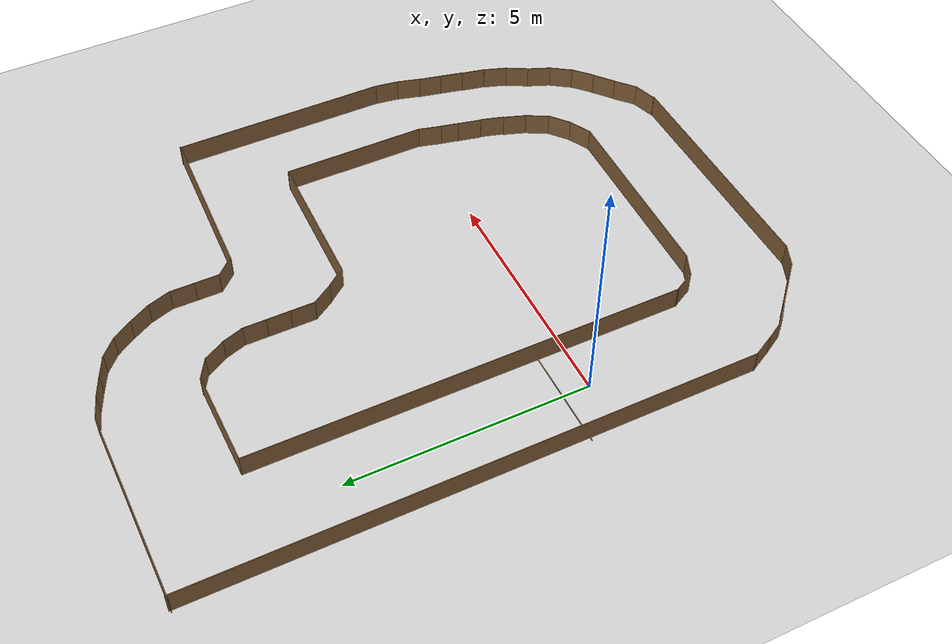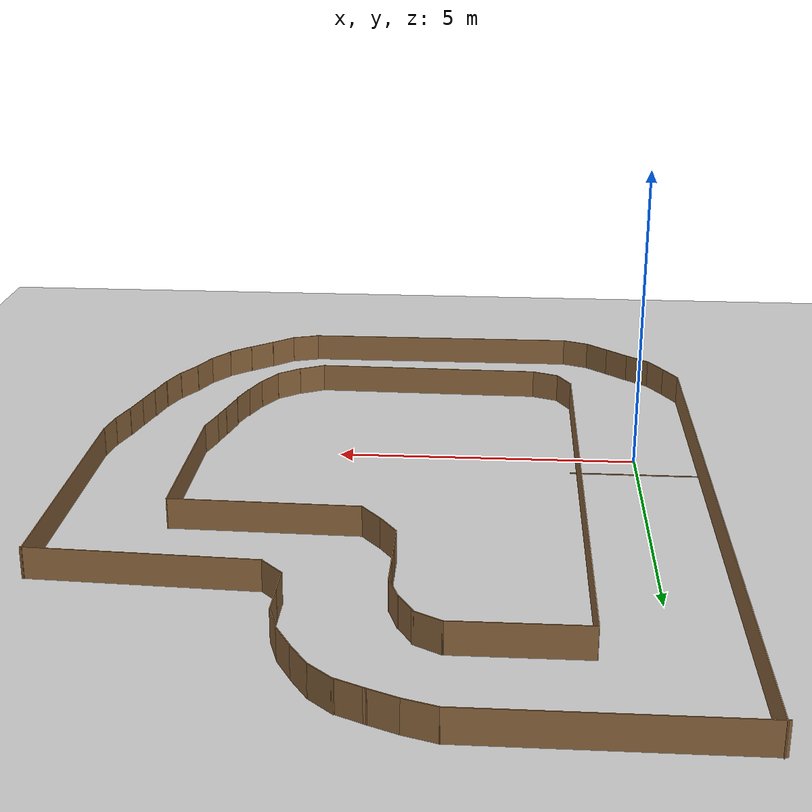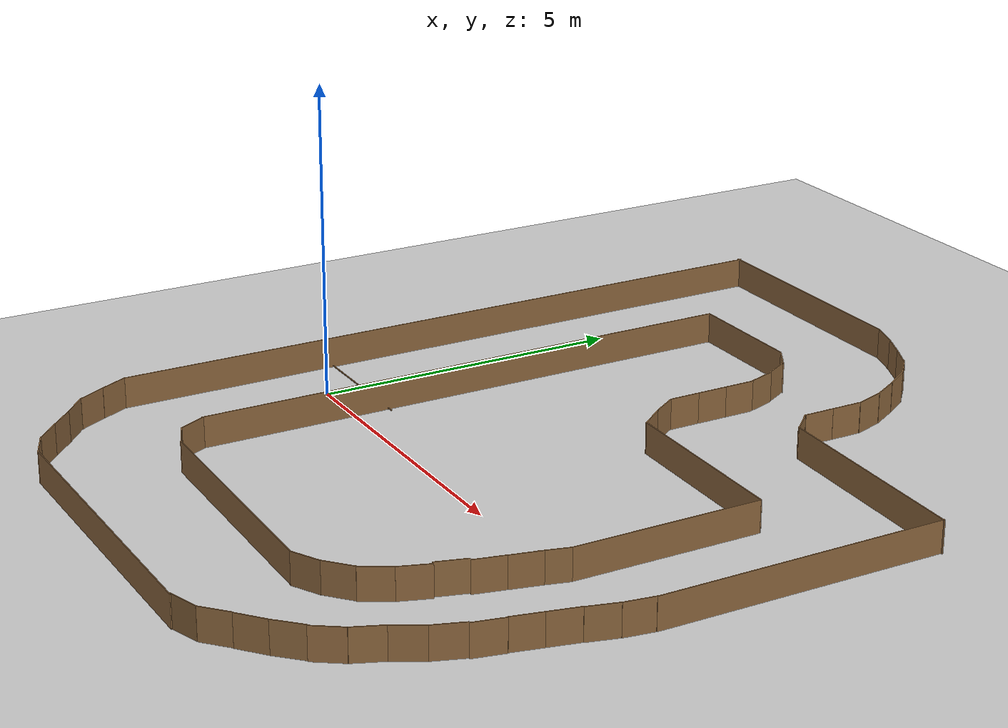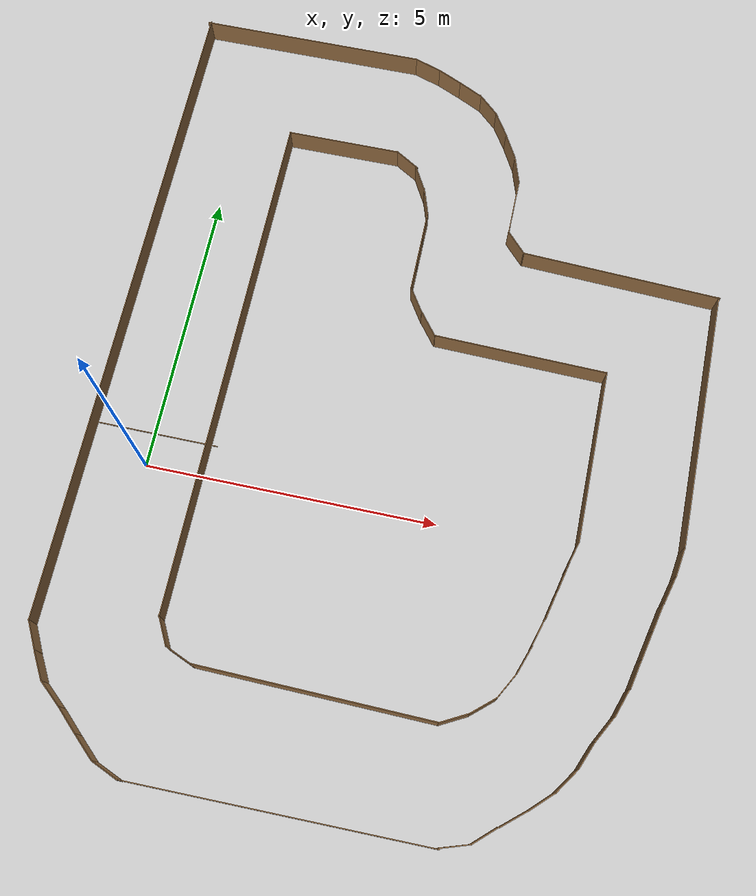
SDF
<sdf version="1.6">
 <world name="default">
  <model name="ground_plane">
   <static>1</static>
   <link name="link">
    <collision name="collision">
     <geometry><plane><normal>0 0 1</normal><size>100 100</size></plane></geometry>
     <surface><friction><ode><mu>100</mu><mu2>50</mu2></ode></friction></surface>
    </collision>
    <visual name="visual">
     <cast_shadows>0</cast_shadows>
     <geometry><plane><normal>0 0 1</normal><size>100 100</size></plane></geometry>
     <material>
      <script><uri>file://media/materials/scripts/gazebo.material</uri><name>Gazebo/Grey</name></script>
     </material>
    </visual>
   </link>
  </model>
  <light name="sun" type="directional">
   <pose>0 0 10 0 -0 0</pose>
   <diffuse>0.8 0.8 0.8 1</diffuse>
   <specular>0.1 0.1 0.1 1</specular>
   <attenuation>
    <range>1000</range>
    <constant>0.9</constant>
    <linear>0.01</linear>
    <quadratic>0.001</quadratic>
   </attenuation>
   <direction>-0.5 0.5 -1</direction>
  </light>
  <model name="startline">
   <pose>-0.00085 0.56884 -0.227659 0 -0 1.56869</pose>
   <static>1</static>
   <link name="papptown_wall::link">
    <pose>0 0 0.25 0 -0 0</pose>
    <visual name="visual">
     <geometry><box><size>0.015 2.2 0.015</size></box></geometry>
     <material>
      <ambient>0.5 0.5 0.5 1</ambient>
      <diffuse>0.57 0.417 0.25 1</diffuse>
      <specular>0.1 0.1 0.1 1</specular>
      <emissive>0 0 0 0</emissive>
     </material>
    </visual>
   </link>
  </model>
  <model name="wall_1">
   <pose>3.6774 5.64773 0 0 -0 0.317174</pose>
   <static>1</static>
   <link name="papptown_wall::link">
    <pose>0 0 0.25 0 -0 0</pose>
    <collision name="collision"><geometry><box><size>0.015 0.5 0.5</size></box></geometry></collision>
    <visual name="visual">
     <geometry><box><size>0.015 0.5 0.5</size></box></geometry>
     <material>
      <ambient>0.5 0.5 0.5 1</ambient>
      <diffuse>0.57 0.417 0.25 1</diffuse>
      <specular>0.1 0.1 0.1 1</specular>
      <emissive>0 0 0 0</emissive>
     </material>
    </visual>
   </link>
  </model>
  <model name="wall_2">
   <pose>3.75701 5.18137 0 0 -0 0</pose>
   <static>1</static>
   <link name="papptown_wall::link">
    <pose>0 0 0.25 0 -0 0</pose>
    <collision name="collision"><geometry><box><size>0.015 0.5 0.5</size></box></geometry></collision>
    <visual name="visual">
     <geometry><box><size>0.015 0.5 0.5</size></box></geometry>
     <material>
      <ambient>0.5 0.5 0.5 1</ambient>
      <diffuse>0.57 0.417 0.25 1</diffuse>
      <specular>0.1 0.1 0.1 1</specular>
      <emissive>0 0 0 0</emissive>
     </material>
    </visual>
   </link>
  </model>
  <model name="wall_3">
   <pose>3.7577 4.68611 0 0 -0 0</pose>
   <static>1</static>
   <link name="papptown_wall::link">
    <pose>0 0 0.25 0 -0 0</pose>
    <collision name="collision"><geometry><box><size>0.015 0.5 0.5</size></box></geometry></collision>
    <visual name="visual">
     <geometry><box><size>0.015 0.5 0.5</size></box></geometry>
     <material>
      <ambient>0.5 0.5 0.5 1</ambient>
      <diffuse>0.57 0.417 0.25 1</diffuse>
      <specular>0.1 0.1 0.1 1</specular>
      <emissive>0 0 0 0</emissive>
     </material>
    </visual>
   </link>
  </model>
  <model name="wall_4">
   <pose>3.75793 4.186745 0 0 -0 0</pose>
   <static>1</static>
   <link name="papptown_wall::link">
    <pose>0 0 0.25 0 -0 0</pose>
    <collision name="collision"><geometry><box><size>0.015 0.5 0.5</size></box></geometry></collision>
    <visual name="visual">
     <geometry><box><size>0.015 0.5 0.5</size></box></geometry>
     <material>
      <ambient>0.5 0.5 0.5 1</ambient>
      <diffuse>0.57 0.417 0.25 1</diffuse>
      <specular>0.1 0.1 0.1 1</specular>
      <emissive>0 0 0 0</emissive>
     </material>
    </visual>
   </link>
  </model>
  <model name="wall_5">
   <pose>3.89229 3.728353 0 0 -0 0.574431</pose>
   <static>1</static>
   <link name="papptown_wall::link">
    <pose>0 0 0.25 0 -0 0</pose>
    <collision name="collision"><geometry><box><size>0.015 0.5 0.5</size></box></geometry></collision>
    <visual name="visual">
     <geometry><box><size>0.015 0.5 0.5</size></box></geometry>
     <material>
      <ambient>0.5 0.5 0.5 1</ambient>
      <diffuse>0.57 0.417 0.25 1</diffuse>
      <specular>0.1 0.1 0.1 1</specular>
      <emissive>0 0 0 0</emissive>
     </material>
    </visual>
   </link>
  </model>
  <model name="wall_6">
   <pose>4.184 3.3263 0 0 -0 0.663234</pose>
   <static>1</static>
   <link name="papptown_wall::link">
    <pose>0 0 0.25 0 -0 0</pose>
    <collision name="collision"><geometry><box><size>0.015 0.5 0.5</size></box></geometry></collision>
    <visual name="visual">
     <geometry><box><size>0.015 0.5 0.5</size></box></geometry>
     <material>
      <ambient>0.5 0.5 0.5 1</ambient>
      <diffuse>0.57 0.417 0.25 1</diffuse>
      <specular>0.1 0.1 0.1 1</specular>
      <emissive>0 0 0 0</emissive>
     </material>
    </visual>
   </link>
  </model>
  <model name="wall_7">
   <pose>5.83356 3.104453 0 0 -0 1.54798</pose>
   <static>1</static>
   <link name="papptown_wall::link">
    <pose>0 0 0.25 0 -0 0</pose>
    <collision name="collision"><geometry><box><size>0.015 3 0.5</size></box></geometry></collision>
    <visual name="visual">
     <geometry><box><size>0.015 3 0.5</size></box></geometry>
     <material>
      <ambient>0.5 0.5 0.5 1</ambient>
      <diffuse>0.57 0.417 0.25 1</diffuse>
      <specular>0.1 0.1 0.1 1</specular>
      <emissive>0 0 0 0</emissive>
     </material>
    </visual>
   </link>
  </model>
  <model name="wall_13">
   <pose>1.988715 6.50823 0 0 -0 1.57467</pose>
   <static>1</static>
   <link name="papptown_wall::link">
    <pose>0 0 0.25 0 -0 0</pose>
    <collision name="collision"><geometry><box><size>0.015 2 0.5</size></box></geometry></collision>
    <visual name="visual">
     <geometry><box><size>0.015 2 0.5</size></box></geometry>
     <material>
      <ambient>0.5 0.5 0.5 1</ambient>
      <diffuse>0.57 0.417 0.25 1</diffuse>
      <specular>0.1 0.1 0.1 1</specular>
      <emissive>0 0 0 0</emissive>
     </material>
    </visual>
   </link>
  </model>
  <model name="wall_14">
   <pose>7.324 1.57996 0 0 0 -0.000378</pose>
   <static>1</static>
   <link name="papptown_wall::link">
    <pose>0 0 0.25 0 -0 0</pose>
    <collision name="collision"><geometry><box><size>0.015 3 0.5</size></box></geometry></collision>
    <visual name="visual">
     <geometry><box><size>0.015 3 0.5</size></box></geometry>
     <material>
      <ambient>0.5 0.5 0.5 1</ambient>
      <diffuse>0.57 0.417 0.25 1</diffuse>
      <specular>0.1 0.1 0.1 1</specular>
      <emissive>0 0 0 0</emissive>
     </material>
    </visual>
   </link>
  </model>
  <model name="wall_20">
   <pose>7.05698 -1.00569 0 0 0 -0.225083</pose>
   <static>1</static>
   <link name="papptown_wall::link">
    <pose>0 0 0.25 0 -0 0</pose>
    <collision name="collision"><geometry><box><size>0.015 0.5 0.5</size></box></geometry></collision>
    <visual name="visual">
     <geometry><box><size>0.015 0.5 0.5</size></box></geometry>
     <material>
      <ambient>0.5 0.5 0.5 1</ambient>
      <diffuse>0.57 0.417 0.25 1</diffuse>
      <specular>0.1 0.1 0.1 1</specular>
      <emissive>0 0 0 0</emissive>
     </material>
    </visual>
   </link>
  </model>
  <model name="wall_21">
   <pose>6.93175 -1.48322 0.01822 0.000666 -0.015416 -0.284627</pose>
   <static>1</static>
   <link name="papptown_wall::link">
    <pose>0 0 0.25 0 -0 0</pose>
    <collision name="collision"><geometry><box><size>0.015 0.5 0.5</size></box></geometry></collision>
    <visual name="visual">
     <geometry><box><size>0.015 0.5 0.5</size></box></geometry>
     <material>
      <ambient>0.5 0.5 0.5 1</ambient>
      <diffuse>0.57 0.417 0.25 1</diffuse>
      <specular>0.1 0.1 0.1 1</specular>
      <emissive>0 0 0 0</emissive>
     </material>
    </visual>
   </link>
  </model>
  <model name="wall_22">
   <pose>6.78752 -1.94624 0 0 0 -0.334721</pose>
   <static>1</static>
   <link name="papptown_wall::link">
    <pose>0 0 0.25 0 -0 0</pose>
    <collision name="collision"><geometry><box><size>0.015 0.5 0.5</size></box></geometry></collision>
    <visual name="visual">
     <geometry><box><size>0.015 0.5 0.5</size></box></geometry>
     <material>
      <ambient>0.5 0.5 0.5 1</ambient>
      <diffuse>0.57 0.417 0.25 1</diffuse>
      <specular>0.1 0.1 0.1 1</specular>
      <emissive>0 0 0 0</emissive>
     </material>
    </visual>
   </link>
  </model>
  <model name="wall_23">
   <pose>6.58461 -2.39968 0 0 0 -0.501603</pose>
   <static>1</static>
   <link name="papptown_wall::link">
    <pose>0 0 0.25 0 -0 0</pose>
    <collision name="collision"><geometry><box><size>0.015 0.5 0.5</size></box></geometry></collision>
    <visual name="visual">
     <geometry><box><size>0.015 0.5 0.5</size></box></geometry>
     <material>
      <ambient>0.5 0.5 0.5 1</ambient>
      <diffuse>0.57 0.417 0.25 1</diffuse>
      <specular>0.1 0.1 0.1 1</specular>
      <emissive>0 0 0 0</emissive>
     </material>
    </visual>
   </link>
  </model>
  <model name="wall_24">
   <pose>6.2747 -2.77991 0.004589 0.00773 0.000663 -0.858577</pose>
   <static>1</static>
   <link name="papptown_wall::link">
    <pose>0 0 0.25 0 -0 0</pose>
    <collision name="collision"><geometry><box><size>0.015 0.5 0.5</size></box></geometry></collision>
    <visual name="visual">
     <geometry><box><size>0.015 0.5 0.5</size></box></geometry>
     <material>
      <ambient>0.5 0.5 0.5 1</ambient>
      <diffuse>0.57 0.417 0.25 1</diffuse>
      <specular>0.1 0.1 0.1 1</specular>
      <emissive>0 0 0 0</emissive>
     </material>
    </visual>
   </link>
  </model>
  <model name="wall_25">
   <pose>5.86516 -3.05856 0 0 -0 2.05993</pose>
   <static>1</static>
   <link name="papptown_wall::link">
    <pose>0 0 0.25 0 -0 0</pose>
    <collision name="collision"><geometry><box><size>0.015 0.5 0.5</size></box></geometry></collision>
    <visual name="visual">
     <geometry><box><size>0.015 0.5 0.5</size></box></geometry>
     <material>
      <ambient>0.5 0.5 0.5 1</ambient>
      <diffuse>0.57 0.417 0.25 1</diffuse>
      <specular>0.1 0.1 0.1 1</specular>
      <emissive>0 0 0 0</emissive>
     </material>
    </visual>
   </link>
  </model>
  <model name="wall_26">
   <pose>7.17168 -0.52005 0 0 -0 2.91566</pose>
   <static>1</static>
   <link name="papptown_wall::link">
    <pose>0 0 0.25 0 -0 0</pose>
    <collision name="collision"><geometry><box><size>0.015 0.5 0.5</size></box></geometry></collision>
    <visual name="visual">
     <geometry><box><size>0.015 0.5 0.5</size></box></geometry>
     <material>
      <ambient>0.5 0.5 0.5 1</ambient>
      <diffuse>0.57 0.417 0.25 1</diffuse>
      <specular>0.1 0.1 0.1 1</specular>
      <emissive>0 0 0 0</emissive>
     </material>
    </visual>
   </link>
  </model>
  <model name="wall_27">
   <pose>0.99059 2.00636 0 0 -0 0</pose>
   <static>1</static>
   <link name="papptown_wall::link">
    <pose>0 0 0.25 0 -0 0</pose>
    <collision name="collision"><geometry><box><size>0.015 9 0.5</size></box></geometry></collision>
    <visual name="visual">
     <geometry><box><size>0.015 9 0.5</size></box></geometry>
     <material>
      <ambient>0.5 0.5 0.5 1</ambient>
      <diffuse>0.57 0.417 0.25 1</diffuse>
      <specular>0.1 0.1 0.1 1</specular>
      <emissive>0 0 0 0</emissive>
     </material>
    </visual>
   </link>
  </model>
  <model name="wall_29">
   <pose>7.26006 -0.15384 0 0 -0 2.87699</pose>
   <static>1</static>
   <link name="papptown_wall::link">
    <pose>0 0 0.25 0 -0 0</pose>
    <collision name="collision"><geometry><box><size>0.015 0.5 0.5</size></box></geometry></collision>
    <visual name="visual">
     <geometry><box><size>0.015 0.5 0.5</size></box></geometry>
     <material>
      <ambient>0.5 0.5 0.5 1</ambient>
      <diffuse>0.57 0.417 0.25 1</diffuse>
      <specular>0.1 0.1 0.1 1</specular>
      <emissive>0 0 0 0</emissive>
     </material>
    </visual>
   </link>
  </model>
  <model name="wall_30">
   <pose>3.6524 -3.13184 0 0 -0 1.55183</pose>
   <static>1</static>
   <link name="papptown_wall::link">
    <pose>0 0 0.25 0 -0 0</pose>
    <collision name="collision"><geometry><box><size>0.015 4 0.5</size></box></geometry></collision>
    <visual name="visual">
     <geometry><box><size>0.015 4 0.5</size></box></geometry>
     <material>
      <ambient>0.5 0.5 0.5 1</ambient>
      <diffuse>0.57 0.417 0.25 1</diffuse>
      <specular>0.1 0.1 0.1 1</specular>
      <emissive>0 0 0 0</emissive>
     </material>
    </visual>
   </link>
  </model>
  <model name="wall_37">
   <pose>1.445822 -3.00334 0 0 -0 1.17762</pose>
   <static>1</static>
   <link name="papptown_wall::link">
    <pose>0 0 0.25 0 -0 0</pose>
    <collision name="collision"><geometry><box><size>0.015 0.5 0.5</size></box></geometry></collision>
    <visual name="visual">
     <geometry><box><size>0.015 0.5 0.5</size></box></geometry>
     <material>
      <ambient>0.5 0.5 0.5 1</ambient>
      <diffuse>0.57 0.417 0.25 1</diffuse>
      <specular>0.1 0.1 0.1 1</specular>
      <emissive>0 0 0 0</emissive>
     </material>
    </visual>
   </link>
  </model>
  <model name="wall_38">
   <pose>1.09995 -2.6845 0 0 -0 0.479885</pose>
   <static>1</static>
   <link name="papptown_wall::link">
    <pose>0 0 0.25 0 -0 0</pose>
    <collision name="collision"><geometry><box><size>0.015 0.5 0.5</size></box></geometry></collision>
    <visual name="visual">
     <geometry><box><size>0.015 0.5 0.5</size></box></geometry>
     <material>
      <ambient>0.5 0.5 0.5 1</ambient>
      <diffuse>0.57 0.417 0.25 1</diffuse>
      <specular>0.1 0.1 0.1 1</specular>
      <emissive>0 0 0 0</emissive>
     </material>
    </visual>
   </link>
  </model>
  <model name="wall_58">
   <pose>3.18123 6.39467 0 0 -0 1.03544</pose>
   <static>1</static>
   <link name="papptown_wall::link">
    <pose>0 0 0.25 0 -0 0</pose>
    <collision name="collision"><geometry><box><size>0.015 0.5 0.5</size></box></geometry></collision>
    <visual name="visual">
     <geometry><box><size>0.015 0.5 0.5</size></box></geometry>
     <material>
      <ambient>0.5 0.5 0.5 1</ambient>
      <diffuse>0.57 0.417 0.25 1</diffuse>
      <specular>0.1 0.1 0.1 1</specular>
      <emissive>0 0 0 0</emissive>
     </material>
    </visual>
   </link>
  </model>
  <model name="wall_59">
   <pose>3.48325 6.07158 0 0 -0 0.511173</pose>
   <static>1</static>
   <link name="papptown_wall::link">
    <pose>0 0 0.25 0 -0 0</pose>
    <collision name="collision"><geometry><box><size>0.015 0.5 0.5</size></box></geometry></collision>
    <visual name="visual">
     <geometry><box><size>0.015 0.5 0.5</size></box></geometry>
     <material>
      <ambient>0.5 0.5 0.5 1</ambient>
      <diffuse>0.57 0.417 0.25 1</diffuse>
      <specular>0.1 0.1 0.1 1</specular>
      <emissive>0 0 0 0</emissive>
     </material>
    </visual>
   </link>
  </model>
  <model name="wall_61">
   <pose>5.1585 6.58669 0 0 -0 0.317174</pose>
   <static>1</static>
   <link name="papptown_wall::link">
    <pose>0 0 0.25 0 -0 0</pose>
    <collision name="collision"><geometry><box><size>0.015 0.5 0.5</size></box></geometry></collision>
    <visual name="visual">
     <geometry><box><size>0.015 0.5 0.5</size></box></geometry>
     <material>
      <ambient>0.5 0.5 0.5 1</ambient>
      <diffuse>0.57 0.417 0.25 1</diffuse>
      <specular>0.1 0.1 0.1 1</specular>
      <emissive>0 0 0 0</emissive>
     </material>
    </visual>
   </link>
  </model>
  <model name="wall_62">
   <pose>5.23175 5.59802 0 0 -0 0</pose>
   <static>1</static>
   <link name="papptown_wall::link">
    <pose>0 0 0.25 0 -0 0</pose>
    <collision name="collision"><geometry><box><size>0.015 0.5 0.5</size></box></geometry></collision>
    <visual name="visual">
     <geometry><box><size>0.015 0.5 0.5</size></box></geometry>
     <material>
      <ambient>0.5 0.5 0.5 1</ambient>
      <diffuse>0.57 0.417 0.25 1</diffuse>
      <specular>0.1 0.1 0.1 1</specular>
      <emissive>0 0 0 0</emissive>
     </material>
    </visual>
   </link>
  </model>
  <model name="wall_63">
   <pose>-1.01395 2.779976 0 0 -0 0</pose>
   <static>1</static>
   <link name="papptown_wall::link">
    <pose>0 0 0.25 0 -0 0</pose>
    <collision name="collision"><geometry><box><size>0.015 11.5 0.5</size></box></geometry></collision>
    <visual name="visual">
     <geometry><box><size>0.015 11.5 0.5</size></box></geometry>
     <material>
      <ambient>0.5 0.5 0.5 1</ambient>
      <diffuse>0.57 0.417 0.25 1</diffuse>
      <specular>0.1 0.1 0.1 1</specular>
      <emissive>0 0 0 0</emissive>
     </material>
    </visual>
   </link>
  </model>
  <model name="wall_64">
   <pose>7.29372 4.91388 0 0 -0 1.52747</pose>
   <static>1</static>
   <link name="papptown_wall::link">
    <pose>0 0 0.25 0 -0 0</pose>
    <collision name="collision"><geometry><box><size>0.015 3.5 0.5</size></box></geometry></collision>
    <visual name="visual">
     <geometry><box><size>0.015 3.5 0.5</size></box></geometry>
     <material>
      <ambient>0.5 0.5 0.5 1</ambient>
      <diffuse>0.57 0.417 0.25 1</diffuse>
      <specular>0.1 0.1 0.1 1</specular>
      <emissive>0 0 0 0</emissive>
     </material>
    </visual>
   </link>
  </model>
  <model name="wall_65">
   <pose>4.71252 7.46019 0 0 -0 0.574431</pose>
   <static>1</static>
   <link name="papptown_wall::link">
    <pose>0 0 0.25 0 -0 0</pose>
    <collision name="collision"><geometry><box><size>0.015 0.5 0.5</size></box></geometry></collision>
    <visual name="visual">
     <geometry><box><size>0.015 0.5 0.5</size></box></geometry>
     <material>
      <ambient>0.5 0.5 0.5 1</ambient>
      <diffuse>0.57 0.417 0.25 1</diffuse>
      <specular>0.1 0.1 0.1 1</specular>
      <emissive>0 0 0 0</emissive>
     </material>
    </visual>
   </link>
  </model>
  <model name="wall_66">
   <pose>5.39583 5.16345 0 0 -0 0.754307</pose>
   <static>1</static>
   <link name="papptown_wall::link">
    <pose>0 0 0.25 0 -0 0</pose>
    <collision name="collision"><geometry><box><size>0.015 0.5 0.5</size></box></geometry></collision>
    <visual name="visual">
     <geometry><box><size>0.015 0.5 0.5</size></box></geometry>
     <material>
      <ambient>0.5 0.5 0.5 1</ambient>
      <diffuse>0.57 0.417 0.25 1</diffuse>
      <specular>0.1 0.1 0.1 1</specular>
      <emissive>0 0 0 0</emissive>
     </material>
    </visual>
   </link>
  </model>
  <model name="wall_73">
   <pose>0.934586 8.50022 0 0 -0 1.57433</pose>
   <static>1</static>
   <link name="papptown_wall::link">
    <pose>0 0 0.25 0 -0 0</pose>
    <collision name="collision"><geometry><box><size>0.015 4 0.5</size></box></geometry></collision>
    <visual name="visual">
     <geometry><box><size>0.015 4 0.5</size></box></geometry>
     <material>
      <ambient>0.5 0.5 0.5 1</ambient>
      <diffuse>0.57 0.417 0.25 1</diffuse>
      <specular>0.1 0.1 0.1 1</specular>
      <emissive>0 0 0 0</emissive>
     </material>
    </visual>
   </link>
  </model>
  <model name="wall_74">
   <pose>9.01034 2.584307 0 0 -0 0</pose>
   <static>1</static>
   <link name="papptown_wall::link">
    <pose>0 0 0.25 0 -0 0</pose>
    <collision name="collision"><geometry><box><size>0.015 4.55 0.5</size></box></geometry></collision>
    <visual name="visual">
     <geometry><box><size>0.015 4.55 0.5</size></box></geometry>
     <material>
      <ambient>0.5 0.5 0.5 1</ambient>
      <diffuse>0.57 0.417 0.25 1</diffuse>
      <specular>0.1 0.1 0.1 1</specular>
      <emissive>0 0 0 0</emissive>
     </material>
    </visual>
   </link>
  </model>
  <model name="wall_80">
   <pose>8.63412 -1.33563 0 0 0 -0.225083</pose>
   <static>1</static>
   <link name="papptown_wall::link">
    <pose>0 0 0.25 0 -0 0</pose>
    <collision name="collision"><geometry><box><size>0.015 0.5 0.5</size></box></geometry></collision>
    <visual name="visual">
     <geometry><box><size>0.015 0.5 0.5</size></box></geometry>
     <material>
      <ambient>0.5 0.5 0.5 1</ambient>
      <diffuse>0.57 0.417 0.25 1</diffuse>
      <specular>0.1 0.1 0.1 1</specular>
      <emissive>0 0 0 0</emissive>
     </material>
    </visual>
   </link>
  </model>
  <model name="wall_81">
   <pose>8.52459 -1.81671 -0.006392 -0.00038 0.001724 -0.216854</pose>
   <static>1</static>
   <link name="papptown_wall::link">
    <pose>0 0 0.25 0 -0 0</pose>
    <collision name="collision"><geometry><box><size>0.015 0.5 0.5</size></box></geometry></collision>
    <visual name="visual">
     <geometry><box><size>0.015 0.5 0.5</size></box></geometry>
     <material>
      <ambient>0.5 0.5 0.5 1</ambient>
      <diffuse>0.57 0.417 0.25 1</diffuse>
      <specular>0.1 0.1 0.1 1</specular>
      <emissive>0 0 0 0</emissive>
     </material>
    </visual>
   </link>
  </model>
  <model name="wall_82">
   <pose>8.37948 -2.29467 0 0 0 -0.334721</pose>
   <static>1</static>
   <link name="papptown_wall::link">
    <pose>0 0 0.25 0 -0 0</pose>
    <collision name="collision"><geometry><box><size>0.015 0.5 0.5</size></box></geometry></collision>
    <visual name="visual">
     <geometry><box><size>0.015 0.5 0.5</size></box></geometry>
     <material>
      <ambient>0.5 0.5 0.5 1</ambient>
      <diffuse>0.57 0.417 0.25 1</diffuse>
      <specular>0.1 0.1 0.1 1</specular>
      <emissive>0 0 0 0</emissive>
     </material>
    </visual>
   </link>
  </model>
  <model name="wall_83">
   <pose>8.17535 -2.74535 0 0 0 -0.501603</pose>
   <static>1</static>
   <link name="papptown_wall::link">
    <pose>0 0 0.25 0 -0 0</pose>
    <collision name="collision"><geometry><box><size>0.015 0.5 0.5</size></box></geometry></collision>
    <visual name="visual">
     <geometry><box><size>0.015 0.5 0.5</size></box></geometry>
     <material>
      <ambient>0.5 0.5 0.5 1</ambient>
      <diffuse>0.57 0.417 0.25 1</diffuse>
      <specular>0.1 0.1 0.1 1</specular>
      <emissive>0 0 0 0</emissive>
     </material>
    </visual>
   </link>
  </model>
  <model name="wall_84">
   <pose>7.40745 -3.99144 0.004825 0.012824 -0 -0.806842</pose>
   <static>1</static>
   <link name="papptown_wall::link">
    <pose>0 0 0.25 0 -0 0</pose>
    <collision name="collision"><geometry><box><size>0.015 0.5 0.5</size></box></geometry></collision>
    <visual name="visual">
     <geometry><box><size>0.015 0.5 0.5</size></box></geometry>
     <material>
      <ambient>0.5 0.5 0.5 1</ambient>
      <diffuse>0.57 0.417 0.25 1</diffuse>
      <specular>0.1 0.1 0.1 1</specular>
      <emissive>0 0 0 0</emissive>
     </material>
    </visual>
   </link>
  </model>
  <model name="wall_85">
   <pose>6.23039 -4.88908 0 0 -0 1.8858</pose>
   <static>1</static>
   <link name="papptown_wall::link">
    <pose>0 0 0.25 0 -0 0</pose>
    <collision name="collision"><geometry><box><size>0.015 0.5 0.5</size></box></geometry></collision>
    <visual name="visual">
     <geometry><box><size>0.015 0.5 0.5</size></box></geometry>
     <material>
      <ambient>0.5 0.5 0.5 1</ambient>
      <diffuse>0.57 0.417 0.25 1</diffuse>
      <specular>0.1 0.1 0.1 1</specular>
      <emissive>0 0 0 0</emissive>
     </material>
    </visual>
   </link>
  </model>
  <model name="wall_86">
   <pose>8.7418 -0.86717 0 0 -0 2.91566</pose>
   <static>1</static>
   <link name="papptown_wall::link">
    <pose>0 0 0.25 0 -0 0</pose>
    <collision name="collision"><geometry><box><size>0.015 0.5 0.5</size></box></geometry></collision>
    <visual name="visual">
     <geometry><box><size>0.015 0.5 0.5</size></box></geometry>
     <material>
      <ambient>0.5 0.5 0.5 1</ambient>
      <diffuse>0.57 0.417 0.25 1</diffuse>
      <specular>0.1 0.1 0.1 1</specular>
      <emissive>0 0 0 0</emissive>
     </material>
    </visual>
   </link>
  </model>
  <model name="wall_89">
   <pose>8.86754 -0.39114 0 0 -0 2.87699</pose>
   <static>1</static>
   <link name="papptown_wall::link">
    <pose>0 0 0.25 0 -0 0</pose>
    <collision name="collision"><geometry><box><size>0.015 0.5 0.5</size></box></geometry></collision>
    <visual name="visual">
     <geometry><box><size>0.015 0.5 0.5</size></box></geometry>
     <material>
      <ambient>0.5 0.5 0.5 1</ambient>
      <diffuse>0.57 0.417 0.25 1</diffuse>
      <specular>0.1 0.1 0.1 1</specular>
      <emissive>0 0 0 0</emissive>
     </material>
    </visual>
   </link>
  </model>
  <model name="wall_90">
   <pose>3.52439 -4.99371 0 0 -0 1.57705</pose>
   <static>1</static>
   <link name="papptown_wall::link">
    <pose>0 0 0.25 0 -0 0</pose>
    <collision name="collision"><geometry><box><size>0.015 5 0.5</size></box></geometry></collision>
    <visual name="visual">
     <geometry><box><size>0.015 5 0.5</size></box></geometry>
     <material>
      <ambient>0.5 0.5 0.5 1</ambient>
      <diffuse>0.57 0.417 0.25 1</diffuse>
      <specular>0.1 0.1 0.1 1</specular>
      <emissive>0 0 0 0</emissive>
     </material>
    </visual>
   </link>
  </model>
  <model name="wall_97">
   <pose>0.798075 -4.9197 0 0 -0 1.17762</pose>
   <static>1</static>
   <link name="papptown_wall::link">
    <pose>0 0 0.25 0 -0 0</pose>
    <collision name="collision"><geometry><box><size>0.015 0.5 0.5</size></box></geometry></collision>
    <visual name="visual">
     <geometry><box><size>0.015 0.5 0.5</size></box></geometry>
     <material>
      <ambient>0.5 0.5 0.5 1</ambient>
      <diffuse>0.57 0.417 0.25 1</diffuse>
      <specular>0.1 0.1 0.1 1</specular>
      <emissive>0 0 0 0</emissive>
     </material>
    </visual>
   </link>
  </model>
  <model name="wall_98">
   <pose>-0.90533 -3.16917 0 0 -0 0.479885</pose>
   <static>1</static>
   <link name="papptown_wall::link">
    <pose>0 0 0.25 0 -0 0</pose>
    <collision name="collision"><geometry><box><size>0.015 0.5 0.5</size></box></geometry></collision>
    <visual name="visual">
     <geometry><box><size>0.015 0.5 0.5</size></box></geometry>
     <material>
      <ambient>0.5 0.5 0.5 1</ambient>
      <diffuse>0.57 0.417 0.25 1</diffuse>
      <specular>0.1 0.1 0.1 1</specular>
      <emissive>0 0 0 0</emissive>
     </material>
    </visual>
   </link>
  </model>
  <model name="wall_118">
   <pose>3.62245 8.25746 0 0 -0 1.1603</pose>
   <static>1</static>
   <link name="papptown_wall::link">
    <pose>0 0 0.25 0 -0 0</pose>
    <collision name="collision"><geometry><box><size>0.015 0.5 0.5</size></box></geometry></collision>
    <visual name="visual">
     <geometry><box><size>0.015 0.5 0.5</size></box></geometry>
     <material>
      <ambient>0.5 0.5 0.5 1</ambient>
      <diffuse>0.57 0.417 0.25 1</diffuse>
      <specular>0.1 0.1 0.1 1</specular>
      <emissive>0 0 0 0</emissive>
     </material>
    </visual>
   </link>
  </model>
  <model name="wall_119">
   <pose>4.96189 7.04144 0 0 -0 0.511173</pose>
   <static>1</static>
   <link name="papptown_wall::link">
    <pose>0 0 0.25 0 -0 0</pose>
    <collision name="collision"><geometry><box><size>0.015 0.5 0.5</size></box></geometry></collision>
    <visual name="visual">
     <geometry><box><size>0.015 0.5 0.5</size></box></geometry>
     <material>
      <ambient>0.5 0.5 0.5 1</ambient>
      <diffuse>0.57 0.417 0.25 1</diffuse>
      <specular>0.1 0.1 0.1 1</specular>
      <emissive>0 0 0 0</emissive>
     </material>
    </visual>
   </link>
  </model>
  <model name="wall_122">
   <pose>-0.66782 -3.60959 0 0 -0 0.516338</pose>
   <static>1</static>
   <link name="papptown_wall::link">
    <pose>0 0 0.25 0 -0 0</pose>
    <collision name="collision"><geometry><box><size>0.015 0.5 0.5</size></box></geometry></collision>
    <visual name="visual">
     <geometry><box><size>0.015 0.5 0.5</size></box></geometry>
     <material>
      <ambient>0.5 0.5 0.5 1</ambient>
      <diffuse>0.57 0.417 0.25 1</diffuse>
      <specular>0.1 0.1 0.1 1</specular>
      <emissive>0 0 0 0</emissive>
     </material>
    </visual>
   </link>
  </model>
  <model name="wall_123">
   <pose>5.23283 6.09709 0 0 -0 0</pose>
   <static>1</static>
   <link name="papptown_wall::link">
    <pose>0 0 0.25 0 -0 0</pose>
    <collision name="collision"><geometry><box><size>0.015 0.5 0.5</size></box></geometry></collision>
    <visual name="visual">
     <geometry><box><size>0.015 0.5 0.5</size></box></geometry>
     <material>
      <ambient>0.5 0.5 0.5 1</ambient>
      <diffuse>0.57 0.417 0.25 1</diffuse>
      <specular>0.1 0.1 0.1 1</specular>
      <emissive>0 0 0 0</emissive>
     </material>
    </visual>
   </link>
  </model>
  <model name="wall_125">
   <pose>8.97058 0.08911 0 0 0 -0.150548</pose>
   <static>1</static>
   <link name="papptown_wall::link">
    <pose>0 0 0.25 0 -0 0</pose>
    <collision name="collision"><geometry><box><size>0.015 0.5 0.5</size></box></geometry></collision>
    <visual name="visual">
     <geometry><box><size>0.015 0.5 0.5</size></box></geometry>
     <material>
      <ambient>0.5 0.5 0.5 1</ambient>
      <diffuse>0.57 0.417 0.25 1</diffuse>
      <specular>0.1 0.1 0.1 1</specular>
      <emissive>0 0 0 0</emissive>
     </material>
    </visual>
   </link>
  </model>
  <model name="wall_126">
   <pose>0.018178 -4.31972 0 0 -0 0.817692</pose>
   <static>1</static>
   <link name="papptown_wall::link">
    <pose>0 0 0.25 0 -0 0</pose>
    <collision name="collision"><geometry><box><size>0.015 0.5 0.5</size></box></geometry></collision>
    <visual name="visual">
     <geometry><box><size>0.015 0.5 0.5</size></box></geometry>
     <material>
      <ambient>0.5 0.5 0.5 1</ambient>
      <diffuse>0.57 0.417 0.25 1</diffuse>
      <specular>0.1 0.1 0.1 1</specular>
      <emissive>0 0 0 0</emissive>
     </material>
    </visual>
   </link>
  </model>
  <model name="wall_129">
   <pose>-0.35427 -3.98932 0 0 -0 0.868599</pose>
   <static>1</static>
   <link name="papptown_wall::link">
    <pose>0 0 0.25 0 -0 0</pose>
    <collision name="collision"><geometry><box><size>0.015 0.5 0.5</size></box></geometry></collision>
    <visual name="visual">
     <geometry><box><size>0.015 0.5 0.5</size></box></geometry>
     <material>
      <ambient>0.5 0.5 0.5 1</ambient>
      <diffuse>0.57 0.417 0.25 1</diffuse>
      <specular>0.1 0.1 0.1 1</specular>
      <emissive>0 0 0 0</emissive>
     </material>
    </visual>
   </link>
  </model>
  <model name="wall_130">
   <pose>7.0341 -4.32359 0 0 -0 2.27333</pose>
   <static>1</static>
   <link name="papptown_wall::link">
    <pose>0 0 0.25 0 -0 0</pose>
    <collision name="collision"><geometry><box><size>0.015 0.5 0.5</size></box></geometry></collision>
    <visual name="visual">
     <geometry><box><size>0.015 0.5 0.5</size></box></geometry>
     <material>
      <ambient>0.5 0.5 0.5 1</ambient>
      <diffuse>0.57 0.417 0.25 1</diffuse>
      <specular>0.1 0.1 0.1 1</specular>
      <emissive>0 0 0 0</emissive>
     </material>
    </visual>
   </link>
  </model>
  <model name="wall_132">
   <pose>6.65529 -4.64479 0 0 -0 2.30639</pose>
   <static>1</static>
   <link name="papptown_wall::link">
    <pose>0 0 0.25 0 -0 0</pose>
    <collision name="collision"><geometry><box><size>0.015 0.5 0.5</size></box></geometry></collision>
    <visual name="visual">
     <geometry><box><size>0.015 0.5 0.5</size></box></geometry>
     <material>
      <ambient>0.5 0.5 0.5 1</ambient>
      <diffuse>0.57 0.417 0.25 1</diffuse>
      <specular>0.1 0.1 0.1 1</specular>
      <emissive>0 0 0 0</emissive>
     </material>
    </visual>
   </link>
  </model>
  <model name="wall_134">
   <pose>7.72836 -3.6193 0 0 -0 2.54029</pose>
   <static>1</static>
   <link name="papptown_wall::link">
    <pose>0 0 0.25 0 -0 0</pose>
    <collision name="collision"><geometry><box><size>0.015 0.5 0.5</size></box></geometry></collision>
    <visual name="visual">
     <geometry><box><size>0.015 0.5 0.5</size></box></geometry>
     <material>
      <ambient>0.5 0.5 0.5 1</ambient>
      <diffuse>0.57 0.417 0.25 1</diffuse>
      <specular>0.1 0.1 0.1 1</specular>
      <emissive>0 0 0 0</emissive>
     </material>
    </visual>
   </link>
  </model>
  <model name="wall_136">
   <pose>7.96526 -3.18048 0 0 -0 2.75305</pose>
   <static>1</static>
   <link name="papptown_wall::link">
    <pose>0 0 0.25 0 -0 0</pose>
    <collision name="collision"><geometry><box><size>0.015 0.5 0.5</size></box></geometry></collision>
    <visual name="visual">
     <geometry><box><size>0.015 0.5 0.5</size></box></geometry>
     <material>
      <ambient>0.5 0.5 0.5 1</ambient>
      <diffuse>0.57 0.417 0.25 1</diffuse>
      <specular>0.1 0.1 0.1 1</specular>
      <emissive>0 0 0 0</emissive>
     </material>
    </visual>
   </link>
  </model>
  <model name="wall_139">
   <pose>0.384895 -4.6576 0 0 -0 0.831655</pose>
   <static>1</static>
   <link name="papptown_wall::link">
    <pose>0 0 0.25 0 -0 0</pose>
    <collision name="collision"><geometry><box><size>0.015 0.5 0.5</size></box></geometry></collision>
    <visual name="visual">
     <geometry><box><size>0.015 0.5 0.5</size></box></geometry>
     <material>
      <ambient>0.5 0.5 0.5 1</ambient>
      <diffuse>0.57 0.417 0.25 1</diffuse>
      <specular>0.1 0.1 0.1 1</specular>
      <emissive>0 0 0 0</emissive>
     </material>
    </visual>
   </link>
  </model>
  <model name="wall_142">
   <pose>3.15915 8.4323 0 0 -0 1.26022</pose>
   <static>1</static>
   <link name="papptown_wall::link">
    <pose>0 0 0.25 0 -0 0</pose>
    <collision name="collision"><geometry><box><size>0.015 0.5 0.5</size></box></geometry></collision>
    <visual name="visual">
     <geometry><box><size>0.015 0.5 0.5</size></box></geometry>
     <material>
      <ambient>0.5 0.5 0.5 1</ambient>
      <diffuse>0.57 0.417 0.25 1</diffuse>
      <specular>0.1 0.1 0.1 1</specular>
      <emissive>0 0 0 0</emissive>
     </material>
    </visual>
   </link>
  </model>
  <model name="wall_146">
   <pose>4.39993 7.82867 0 0 -0 0.829422</pose>
   <static>1</static>
   <link name="papptown_wall::link">
    <pose>0 0 0.25 0 -0 0</pose>
    <collision name="collision"><geometry><box><size>0.015 0.5 0.5</size></box></geometry></collision>
    <visual name="visual">
     <geometry><box><size>0.015 0.5 0.5</size></box></geometry>
     <material>
      <ambient>0.5 0.5 0.5 1</ambient>
      <diffuse>0.57 0.417 0.25 1</diffuse>
      <specular>0.1 0.1 0.1 1</specular>
      <emissive>0 0 0 0</emissive>
     </material>
    </visual>
   </link>
  </model>
  <model name="wall_147">
   <pose>4.02562 8.07351 0 0 -0 1.12683</pose>
   <static>1</static>
   <link name="papptown_wall::link">
    <pose>0 0 0.25 0 -0 0</pose>
    <collision name="collision"><geometry><box><size>0.015 0.5 0.5</size></box></geometry></collision>
    <visual name="visual">
     <geometry><box><size>0.015 0.5 0.5</size></box></geometry>
     <material>
      <ambient>0.5 0.5 0.5 1</ambient>
      <diffuse>0.57 0.417 0.25 1</diffuse>
      <specular>0.1 0.1 0.1 1</specular>
      <emissive>0 0 0 0</emissive>
     </material>
    </visual>
   </link>
  </model>
  <gravity>0 0 -9.8</gravity>
  <magnetic_field>6e-06 2.3e-05 -4.2e-05</magnetic_field>
  <atmosphere type="adiabatic"/>
  <physics name="default_physics" default="0" type="ode">
   <max_step_size>0.001</max_step_size>
   <real_time_factor>1</real_time_factor>
   <real_time_update_rate>1000</real_time_update_rate>
  </physics>
  <scene><ambient>0.4 0.4 0.4 1</ambient><background>0.7 0.7 0.7 1</background><shadows>1</shadows></scene>
  <spherical_coordinates>
   <surface_model>EARTH_WGS84</surface_model>
   <latitude_deg>0</latitude_deg>
   <longitude_deg>0</longitude_deg>
   <elevation>0</elevation>
   <heading_deg>0</heading_deg>
  </spherical_coordinates>
 </world>
</sdf>
